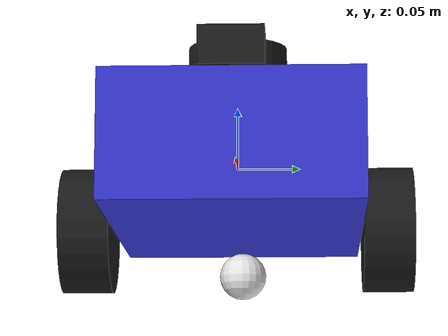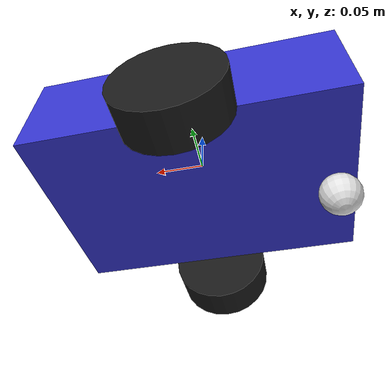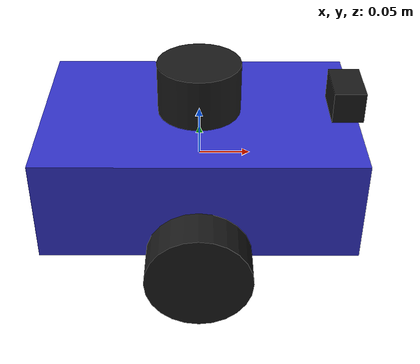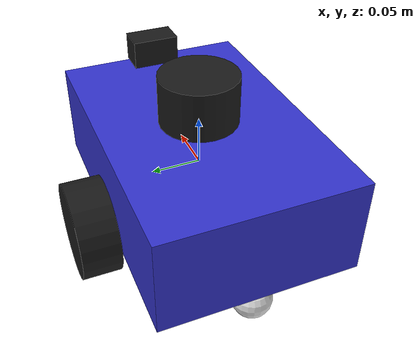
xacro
<?xml version="1.0"?>
<robot xmlns:xacro="http://www.ros.org/wiki/xacro" name="my_robot">

    <xacro:include filename="$(find my_robot_description)/urdf/properties.xacro"/>
    <xacro:include filename="$(find my_robot_description)/urdf/materials.xacro"/>
    <xacro:include filename="$(find my_robot_description)/urdf/macros.xacro"/>

    <xacro:include filename="$(find my_robot_description)/urdf/chassis.xacro"/>
    <xacro:include filename="$(find my_robot_description)/urdf/sensors.xacro"/>

</robot>

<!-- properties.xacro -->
<robot xmlns:xacro="http://www.ros.org/wiki/xacro">

  <xacro:property name="wheel_radius" value="0.05"/>    <xacro:property name="wheel_width" value="0.04"/>     <xacro:property name="wheel_y_offset" value="0.12"/>  <xacro:property name="wheel_z_offset" value="-0.05"/> <xacro:property name="chassis_x" value="0.30"/>       <xacro:property name="chassis_y" value="0.20"/>       <xacro:property name="chassis_z" value="0.10"/>       <xacro:property name="caster_radius" value="0.02"/>   <xacro:property name="PI" value="3.14159265"/>

</robot>

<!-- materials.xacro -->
<robot xmlns:xacro="http://www.ros.org/wiki/xacro">

  <material name="blue">
    <color rgba="0.2 0.2 0.8 1.0"/>
  </material>

  <material name="black">
    <color rgba="0.1 0.1 0.1 1.0"/>
  </material>

  <material name="white">
    <color rgba="0.9 0.9 0.9 1.0"/>
  </material>

</robot>

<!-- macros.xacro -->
<robot xmlns:xacro="http://www.ros.org/wiki/xacro">

    <xacro:macro name="box_inertia" params="m x y z">
        <inertial>
            <origin xyz="0 0 0" rpy="0 0 0"/>
            <mass value="${m}"/>
            <inertia ixx="${(1/12) * m * (y*y + z*z)}" ixy="0" ixz="0"
                     iyy="${(1/12) * m * (x*x + z*z)}" iyz="0"
                     izz="${(1/12) * m * (x*x + y*y)}"/>
        </inertial>
    </xacro:macro>

    <xacro:macro name="cylinder_inertia" params="m r h">
        <inertial>
            <origin xyz="0 0 0" rpy="0 0 0"/>
            <mass value="${m}"/>
            <inertia ixx="${(1/12) * m * (3*r*r + h*h)}" ixy="0" ixz="0"
                     iyy="${(1/12) * m * (3*r*r + h*h)}" iyz="0"
                     izz="${(1/2) * m * r*r}"/>
        </inertial>
    </xacro:macro>

    <xacro:macro name="sphere_inertia" params="m r">
        <inertial>
            <mass value="${m}"/>
            <inertia ixx="${(2/5) * m * r*r}" ixy="0" ixz="0"
                     iyy="${(2/5) * m * r*r}" iyz="0"
                     izz="${(2/5) * m * r*r}"/>
        </inertial>
    </xacro:macro>

    <xacro:macro name="drive_wheel" params="prefix reflect">
        <link name="${prefix}_wheel_link">
            <visual>
                <geometry>
                    <cylinder radius="${wheel_radius}" length="${wheel_width}"/>
                </geometry>
                <material name="black"/>
            </visual>
            <collision>
                <geometry>
                    <cylinder radius="${wheel_radius}" length="${wheel_width}"/>
                </geometry>
            </collision>
            <xacro:cylinder_inertia m="0.1" r="${wheel_radius}" h="${wheel_width}"/>
        </link>

        <joint name="${prefix}_wheel_joint" type="continuous">
            <parent link="base_link"/>
            <child link="${prefix}_wheel_link"/>
            <origin xyz="0 ${reflect * wheel_y_offset} ${wheel_z_offset}" rpy="${-PI/2} 0 0"/>
            <axis xyz="0 0 1"/>
        </joint>
    </xacro:macro>

</robot>

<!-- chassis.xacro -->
<robot xmlns:xacro="http://www.ros.org/wiki/xacro">

<link name="base_footprint"/>

  <joint name="base_footprint_joint" type="fixed">
    <parent link="base_link"/>
    <child link="base_footprint"/>
    <origin xyz="0 0 ${-chassis_z/2}" rpy="0 0 0"/>
  </joint>

  <link name="base_link">
    <visual>
      <geometry>
        <box size="${chassis_x} ${chassis_y} ${chassis_z}"/>
      </geometry>
      <material name="blue"/>
    </visual>
    <collision>
      <geometry>
        <box size="${chassis_x} ${chassis_y} ${chassis_z}"/>
      </geometry>
    </collision>
    <xacro:box_inertia m="1.0" x="${chassis_x}" y="${chassis_y}" z="${chassis_z}"/>
  </link>

  <xacro:drive_wheel prefix="left" reflect="1"/>
  <xacro:drive_wheel prefix="right" reflect="-1"/>

  <link name="caster_link">
    <visual>
      <geometry>
        <sphere radius="${caster_radius}"/>
      </geometry>
      <material name="white"/>
    </visual>
    <collision>
      <geometry>
        <sphere radius="${caster_radius}"/>
      </geometry>
    </collision>
    <xacro:sphere_inertia m="0.05" r="${caster_radius}"/>
  </link>

  <joint name="caster_joint" type="fixed">
    <parent link="base_link"/>
    <child link="caster_link"/>
    <origin xyz="${-chassis_x/2 + caster_radius} 0 ${-chassis_z/2 - caster_radius}" rpy="0 0 0"/>
  </joint>

</robot>

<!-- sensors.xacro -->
<robot xmlns:xacro="http://www.ros.org/wiki/xacro">

  <link name="camera_link">
    <visual>
      <geometry>
        <box size="0.03 0.05 0.03"/>
      </geometry>
      <material name="black"/>
    </visual>
  </link>

  <joint name="camera_joint" type="fixed">
    <parent link="base_link"/>
    <child link="camera_link"/>
    <origin xyz="${chassis_x/2 - 0.01} 0 ${chassis_z/2 + 0.015}" rpy="0 0 0"/>
  </joint>

  <link name="camera_optical_link"/>
  <joint name="camera_optical_joint" type="fixed">
    <parent link="camera_link"/>
    <child link="camera_optical_link"/>
    <origin xyz="0 0 0" rpy="${-PI/2} 0 ${-PI/2}"/>
  </joint>

  <link name="lidar_link">
    <visual>
      <geometry>
        <cylinder radius="0.04" length="0.05"/>
      </geometry>
      <material name="black"/>
    </visual>
  </link>

  <joint name="lidar_joint" type="fixed">
    <parent link="base_link"/>
    <child link="lidar_link"/>
    <origin xyz="0 0 ${chassis_z/2 + 0.025}" rpy="0 0 0"/>
  </joint>

</robot>
